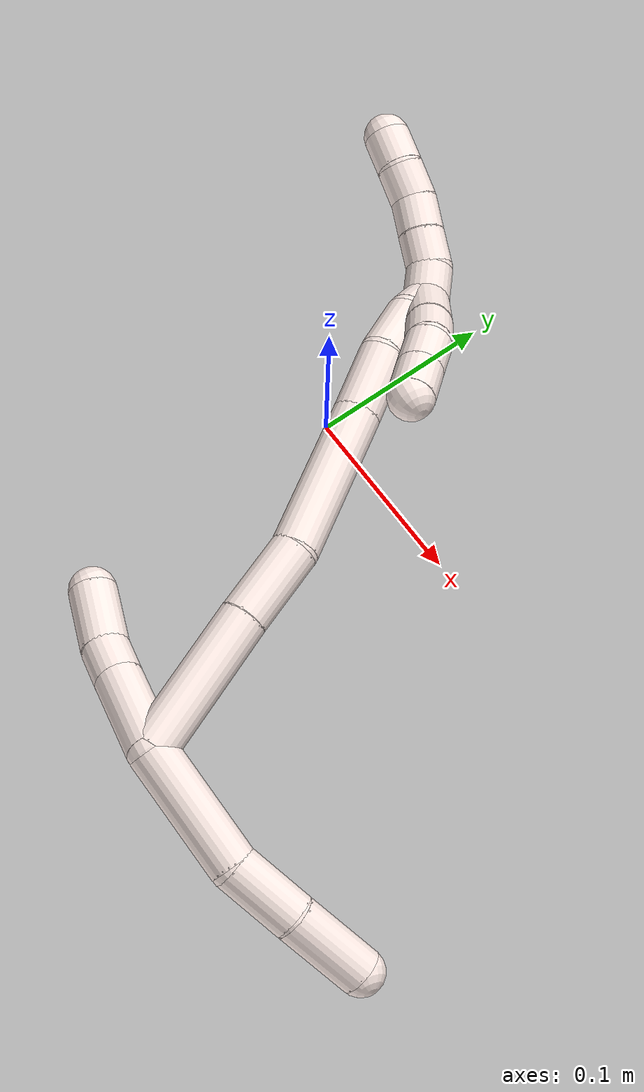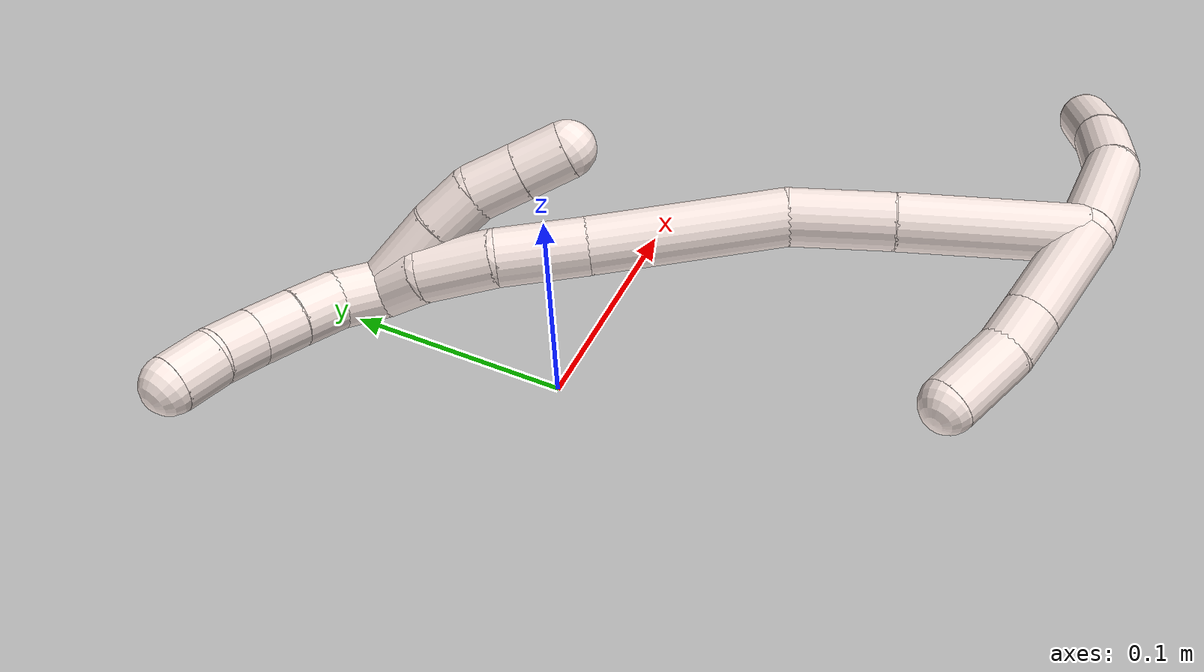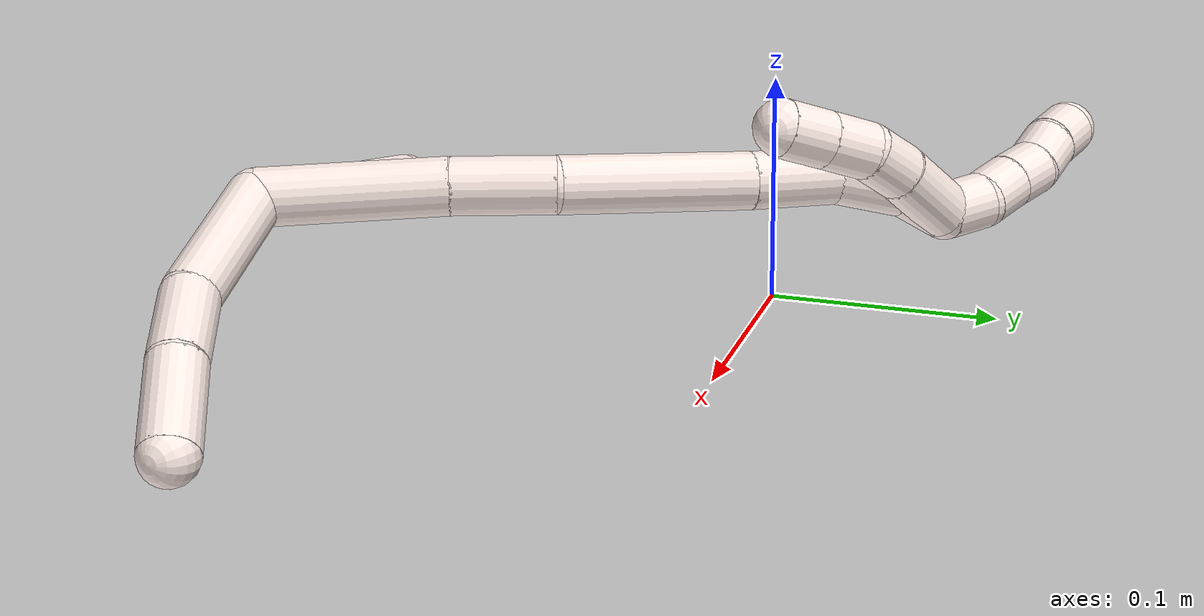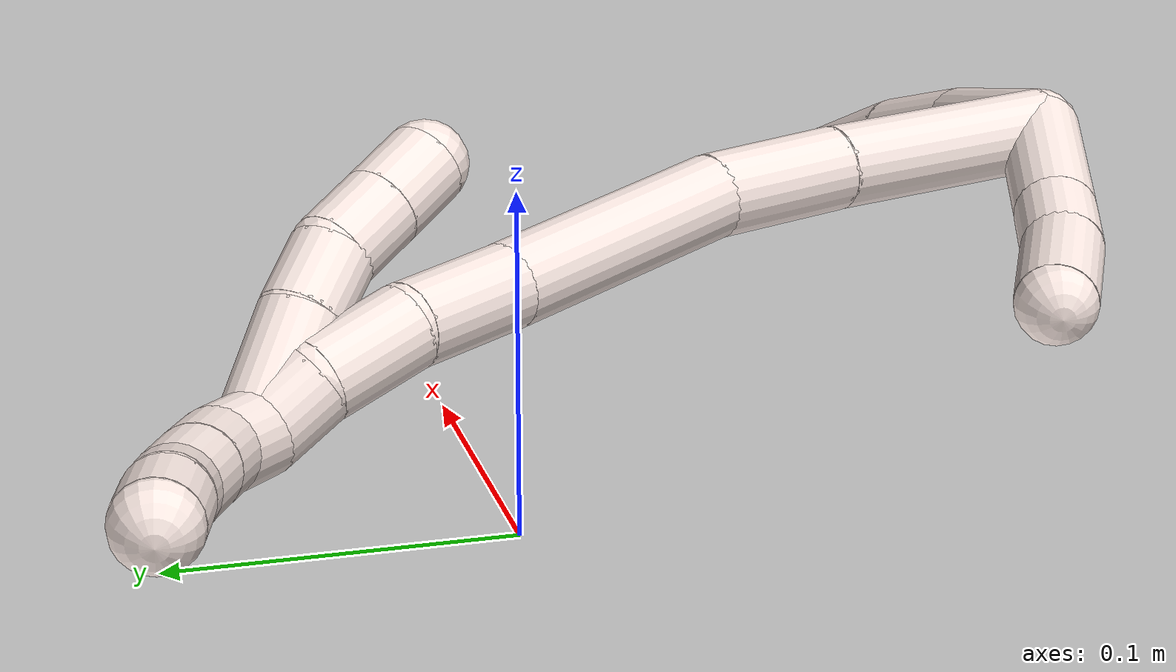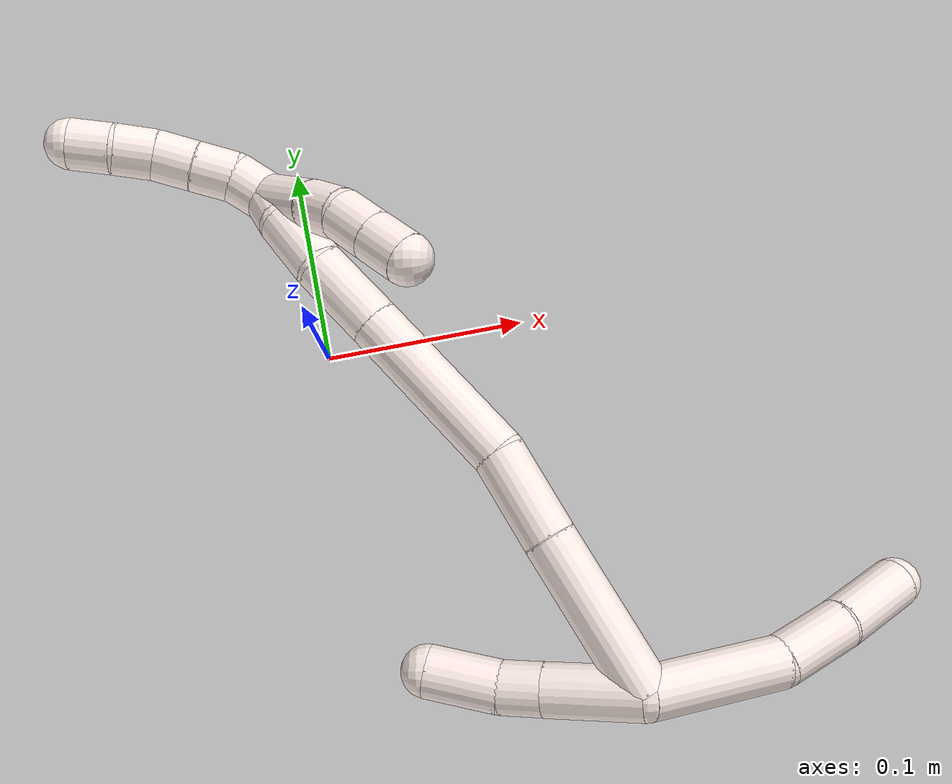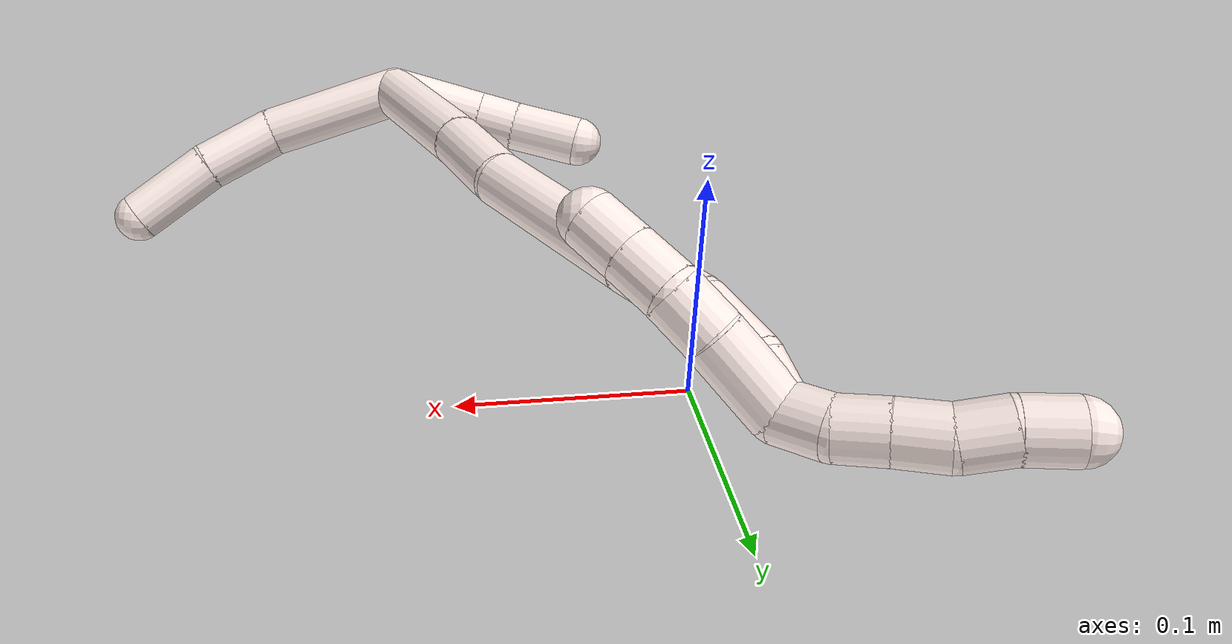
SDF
<sdf version="1.7">
 <world name="default">
  <model name="photoneo_s_sensor">
   <static>1</static>
   <pose>0 0 2 1.57079 1.57079 3.14159</pose>
   <link name="link">
    <inertial><mass>0.1</mass></inertial>
    <sensor name="sensor" type="depth">
     <update_rate>30</update_rate>
     <camera>
      <horizontal_fov>1.22</horizontal_fov>
      <image><width>1920</width><height>1200</height><format>B8G8R8</format></image>
      <clip><near>0.1</near><far>4</far></clip>
      <depth_camera><output>points</output></depth_camera>
     </camera>
     <plugin name="camera_plugin" filename="libgazebo_ros_depth_camera.so">
      <baseline>0.2</baseline>
      <alwaysOn>1</alwaysOn>
      <updateRate>0.0</updateRate>
      <cameraName>camera_ir</cameraName>
      <imageTopicName>/camera/color/image_raw</imageTopicName>
      <cameraInfoTopicName>/camera/color/camera_info</cameraInfoTopicName>
      <depthImageTopicName>/camera/depth/image_raw</depthImageTopicName>
      <depthImageCameraInfoTopicName>/camera/depth/camera_info</depthImageCameraInfoTopicName>
      <pointCloudTopicName>/camera/depth/points</pointCloudTopicName>
      <frameName>fr_optical</frameName>
      <pointCloudCutoff>0.1</pointCloudCutoff>
      <pointCloudCutoffMax>2.0</pointCloudCutoffMax>
      <distortionK1>0</distortionK1>
      <distortionK2>0</distortionK2>
      <distortionK3>0</distortionK3>
      <distortionT1>0</distortionT1>
      <distortionT2>0</distortionT2>
      <CxPrime>0</CxPrime>
      <Cx>0</Cx>
      <Cy>0</Cy>
      <focalLength>0</focalLength>
      <hackBaseline>0</hackBaseline>
     </plugin>
    </sensor>
   </link>
  </model>
  <model name="bin">
   <static>1</static>
   <link name="bottom">
    <collision name="collision-bottom">
     <pose>0 0 -0.01 0 -0 0</pose>
     <geometry><box><size>0.8 0.6 0.02</size></box></geometry>
     <surface>
      <friction><ode><mu>100</mu><mu2>100</mu2></ode></friction>
      <contact><collide_bitmask>65535</collide_bitmask></contact>
     </surface>
    </collision>
   </link>
   <link name="west_wall">
    <collision name="collision-west_wall">
     <pose>-0.41 0 0.1 0 -0 0</pose>
     <geometry><box><size>0.02 0.6 0.2</size></box></geometry>
     <surface>
      <friction><ode><mu>100</mu><mu2>100</mu2></ode></friction>
      <contact><collide_bitmask>65535</collide_bitmask></contact>
     </surface>
    </collision>
   </link>
   <link name="east_wall">
    <collision name="collision-east_wall">
     <pose>0.41 0 0.1 0 -0 0</pose>
     <geometry><box><size>0.02 0.6 0.2</size></box></geometry>
     <surface>
      <friction><ode><mu>100</mu><mu2>100</mu2></ode></friction>
      <contact><collide_bitmask>65535</collide_bitmask></contact>
     </surface>
    </collision>
   </link>
   <link name="south_wall">
    <collision name="collision-south_wall">
     <pose>0 -0.31 0.1 0 -0 0</pose>
     <geometry><box><size>0.8 0.02 0.2</size></box></geometry>
     <surface>
      <friction><ode><mu>100</mu><mu2>100</mu2></ode></friction>
      <contact><collide_bitmask>65535</collide_bitmask></contact>
     </surface>
    </collision>
   </link>
   <link name="north_wall">
    <collision name="collision-north_wall">
     <pose>0 0.31 0.1 0 -0 0</pose>
     <geometry><box><size>0.8 0.02 0.2</size></box></geometry>
     <surface>
      <friction><ode><mu>100</mu><mu2>100</mu2></ode></friction>
      <contact><collide_bitmask>65535</collide_bitmask></contact>
     </surface>
    </collision>
   </link>
  </model>
  <model name="11">
   <static>0</static>
   <link name="11">
    <collision name="collision-cylinder-e_1_2_8">
     <pose>0.009358 0.010302 0.03099 -0.320929 0.279078 -0.045458</pose>
     <geometry><cylinder><radius>0.0125</radius><length>0.067943</length></cylinder></geometry>
     <surface>
      <friction><ode><mu>1.16</mu><mu2>1.16</mu2><slip1>0</slip1><slip2>0</slip2></ode></friction>
      <contact><ode><kp>1e+06</kp><kd>1</kd><max_vel>0</max_vel><min_depth>0.001</min_depth></ode></contact>
     </surface>
    </collision>
    <visual name="visual-cylinder-e_1_2_8">
     <pose>0.009358 0.010302 0.03099 -0.320929 0.279078 -0.045458</pose>
     <geometry><cylinder><radius>0.0125</radius><length>0.067943</length></cylinder></geometry>
     <material><ambient>1 0.933333 0.909804 1</ambient></material>
    </visual>
    <collision name="collision-cylinder-e_2_8_9">
     <pose>0.023545 0.031215 0.07718 -0.609472 0.254825 -0.080544</pose>
     <geometry><cylinder><radius>0.0125</radius><length>0.038315</length></cylinder></geometry>
     <surface>
      <friction><ode><mu>1.16</mu><mu2>1.16</mu2><slip1>0</slip1><slip2>0</slip2></ode></friction>
      <contact><ode><kp>1e+06</kp><kd>1</kd><max_vel>0</max_vel><min_depth>0.001</min_depth></ode></contact>
     </surface>
    </collision>
    <visual name="visual-cylinder-e_2_8_9">
     <pose>0.023545 0.031215 0.07718 -0.609472 0.254825 -0.080544</pose>
     <geometry><cylinder><radius>0.0125</radius><length>0.038315</length></cylinder></geometry>
     <material><ambient>1 0.933333 0.909804 1</ambient></material>
    </visual>
    <collision name="collision-cylinder-e_3_9_6">
     <pose>0.036248 0.054949 0.108008 -0.698471 0.368255 -0.135434</pose>
     <geometry><cylinder><radius>0.0125</radius><length>0.043742</length></cylinder></geometry>
     <surface>
      <friction><ode><mu>1.16</mu><mu2>1.16</mu2><slip1>0</slip1><slip2>0</slip2></ode></friction>
      <contact><ode><kp>1e+06</kp><kd>1</kd><max_vel>0</max_vel><min_depth>0.001</min_depth></ode></contact>
     </surface>
    </collision>
    <visual name="visual-cylinder-e_3_9_6">
     <pose>0.036248 0.054949 0.108008 -0.698471 0.368255 -0.135434</pose>
     <geometry><cylinder><radius>0.0125</radius><length>0.043742</length></cylinder></geometry>
     <material><ambient>1 0.933333 0.909804 1</ambient></material>
    </visual>
    <collision name="collision-cylinder-e_1_2_10">
     <pose>0.003507 0.001977 -0.022484 -3.05387 0.154158 -2.10808</pose>
     <geometry><cylinder><radius>0.0125</radius><length>0.045683</length></cylinder></geometry>
     <surface>
      <friction><ode><mu>1.16</mu><mu2>1.16</mu2><slip1>0</slip1><slip2>0</slip2></ode></friction>
      <contact><ode><kp>1e+06</kp><kd>1</kd><max_vel>0</max_vel><min_depth>0.001</min_depth></ode></contact>
     </surface>
    </collision>
    <visual name="visual-cylinder-e_1_2_10">
     <pose>0.003507 0.001977 -0.022484 -3.05387 0.154158 -2.10808</pose>
     <geometry><cylinder><radius>0.0125</radius><length>0.045683</length></cylinder></geometry>
     <material><ambient>1 0.933333 0.909804 1</ambient></material>
    </visual>
    <collision name="collision-cylinder-e_2_10_11">
     <pose>0.008429 0.004902 -0.054861 -3.04615 0.141396 -1.95489</pose>
     <geometry><cylinder><radius>0.0125</radius><length>0.020079</length></cylinder></geometry>
     <surface>
      <friction><ode><mu>1.16</mu><mu2>1.16</mu2><slip1>0</slip1><slip2>0</slip2></ode></friction>
      <contact><ode><kp>1e+06</kp><kd>1</kd><max_vel>0</max_vel><min_depth>0.001</min_depth></ode></contact>
     </surface>
    </collision>
    <visual name="visual-cylinder-e_2_10_11">
     <pose>0.008429 0.004902 -0.054861 -3.04615 0.141396 -1.95489</pose>
     <geometry><cylinder><radius>0.0125</radius><length>0.020079</length></cylinder></geometry>
     <material><ambient>1 0.933333 0.909804 1</ambient></material>
    </visual>
    <collision name="collision-cylinder-e_3_11_5">
     <pose>0.009688 0.009524 -0.081475 -2.92524 -0.009125 0.083975</pose>
     <geometry><cylinder><radius>0.0125</radius><length>0.034239</length></cylinder></geometry>
     <surface>
      <friction><ode><mu>1.16</mu><mu2>1.16</mu2><slip1>0</slip1><slip2>0</slip2></ode></friction>
      <contact><ode><kp>1e+06</kp><kd>1</kd><max_vel>0</max_vel><min_depth>0.001</min_depth></ode></contact>
     </surface>
    </collision>
    <visual name="visual-cylinder-e_3_11_5">
     <pose>0.009688 0.009524 -0.081475 -2.92524 -0.009125 0.083975</pose>
     <geometry><cylinder><radius>0.0125</radius><length>0.034239</length></cylinder></geometry>
     <material><ambient>1 0.933333 0.909804 1</ambient></material>
    </visual>
    <collision name="collision-cylinder-e_1_2_12">
     <pose>-0.013457 0.031336 -0.020783 -2.15641 -0.343679 0.625482</pose>
     <geometry><cylinder><radius>0.0125</radius><length>0.079874</length></cylinder></geometry>
     <surface>
      <friction><ode><mu>1.16</mu><mu2>1.16</mu2><slip1>0</slip1><slip2>0</slip2></ode></friction>
      <contact><ode><kp>1e+06</kp><kd>1</kd><max_vel>0</max_vel><min_depth>0.001</min_depth></ode></contact>
     </surface>
    </collision>
    <visual name="visual-cylinder-e_1_2_12">
     <pose>-0.013457 0.031336 -0.020783 -2.15641 -0.343679 0.625482</pose>
     <geometry><cylinder><radius>0.0125</radius><length>0.079874</length></cylinder></geometry>
     <material><ambient>1 0.933333 0.909804 1</ambient></material>
    </visual>
    <collision name="collision-cylinder-e_2_12_13">
     <pose>-0.03354 0.080705 -0.052854 -2.13011 -0.301918 0.536152</pose>
     <geometry><cylinder><radius>0.0125</radius><length>0.044565</length></cylinder></geometry>
     <surface>
      <friction><ode><mu>1.16</mu><mu2>1.16</mu2><slip1>0</slip1><slip2>0</slip2></ode></friction>
      <contact><ode><kp>1e+06</kp><kd>1</kd><max_vel>0</max_vel><min_depth>0.001</min_depth></ode></contact>
     </surface>
    </collision>
    <visual name="visual-cylinder-e_2_12_13">
     <pose>-0.03354 0.080705 -0.052854 -2.13011 -0.301918 0.536152</pose>
     <geometry><cylinder><radius>0.0125</radius><length>0.044565</length></cylinder></geometry>
     <material><ambient>1 0.933333 0.909804 1</ambient></material>
    </visual>
    <collision name="collision-cylinder-e_3_13_14">
     <pose>-0.049246 0.128358 -0.092889 -2.34124 -0.216541 0.503042</pose>
     <geometry><cylinder><radius>0.0125</radius><length>0.084526</length></cylinder></geometry>
     <surface>
      <friction><ode><mu>1.16</mu><mu2>1.16</mu2><slip1>0</slip1><slip2>0</slip2></ode></friction>
      <contact><ode><kp>1e+06</kp><kd>1</kd><max_vel>0</max_vel><min_depth>0.001</min_depth></ode></contact>
     </surface>
    </collision>
    <visual name="visual-cylinder-e_3_13_14">
     <pose>-0.049246 0.128358 -0.092889 -2.34124 -0.216541 0.503042</pose>
     <geometry><cylinder><radius>0.0125</radius><length>0.084526</length></cylinder></geometry>
     <material><ambient>1 0.933333 0.909804 1</ambient></material>
    </visual>
    <collision name="collision-cylinder-e_4_14_15">
     <pose>-0.063086 0.171119 -0.134878 -2.35999 -0.249843 0.591714</pose>
     <geometry><cylinder><radius>0.0125</radius><length>0.038506</length></cylinder></geometry>
     <surface>
      <friction><ode><mu>1.16</mu><mu2>1.16</mu2><slip1>0</slip1><slip2>0</slip2></ode></friction>
      <contact><ode><kp>1e+06</kp><kd>1</kd><max_vel>0</max_vel><min_depth>0.001</min_depth></ode></contact>
     </surface>
    </collision>
    <visual name="visual-cylinder-e_4_14_15">
     <pose>-0.063086 0.171119 -0.134878 -2.35999 -0.249843 0.591714</pose>
     <geometry><cylinder><radius>0.0125</radius><length>0.038506</length></cylinder></geometry>
     <material><ambient>1 0.933333 0.909804 1</ambient></material>
    </visual>
    <collision name="collision-cylinder-e_5_15_16">
     <pose>-0.068581 0.196925 -0.157778 -2.22236 -0.046091 0.093067</pose>
     <geometry><cylinder><radius>0.0125</radius><length>0.031891</length></cylinder></geometry>
     <surface>
      <friction><ode><mu>1.16</mu><mu2>1.16</mu2><slip1>0</slip1><slip2>0</slip2></ode></friction>
      <contact><ode><kp>1e+06</kp><kd>1</kd><max_vel>0</max_vel><min_depth>0.001</min_depth></ode></contact>
     </surface>
    </collision>
    <visual name="visual-cylinder-e_5_15_16">
     <pose>-0.068581 0.196925 -0.157778 -2.22236 -0.046091 0.093067</pose>
     <geometry><cylinder><radius>0.0125</radius><length>0.031891</length></cylinder></geometry>
     <material><ambient>1 0.933333 0.909804 1</ambient></material>
    </visual>
    <collision name="collision-cylinder-e_6_16_1">
     <pose>-0.067019 0.218391 -0.172311 -2.07653 0.224549 -0.378068</pose>
     <geometry><cylinder><radius>0.0125</radius><length>0.020637</length></cylinder></geometry>
     <surface>
      <friction><ode><mu>1.16</mu><mu2>1.16</mu2><slip1>0</slip1><slip2>0</slip2></ode></friction>
      <contact><ode><kp>1e+06</kp><kd>1</kd><max_vel>0</max_vel><min_depth>0.001</min_depth></ode></contact>
     </surface>
    </collision>
    <visual name="visual-cylinder-e_6_16_1">
     <pose>-0.067019 0.218391 -0.172311 -2.07653 0.224549 -0.378068</pose>
     <geometry><cylinder><radius>0.0125</radius><length>0.020637</length></cylinder></geometry>
     <material><ambient>1 0.933333 0.909804 1</ambient></material>
    </visual>
    <collision name="collision-cylinder-e_1_1_17">
     <pose>-0.072956 0.218415 -0.16415 0.592616 -0.482715 -0.150019</pose>
     <geometry><cylinder><radius>0.0125</radius><length>0.035481</length></cylinder></geometry>
     <surface>
      <friction><ode><mu>1.16</mu><mu2>1.16</mu2><slip1>0</slip1><slip2>0</slip2></ode></friction>
      <contact><ode><kp>1e+06</kp><kd>1</kd><max_vel>0</max_vel><min_depth>0.001</min_depth></ode></contact>
     </surface>
    </collision>
    <visual name="visual-cylinder-e_1_1_17">
     <pose>-0.072956 0.218415 -0.16415 0.592616 -0.482715 -0.150019</pose>
     <geometry><cylinder><radius>0.0125</radius><length>0.035481</length></cylinder></geometry>
     <material><ambient>1 0.933333 0.909804 1</ambient></material>
    </visual>
    <collision name="collision-cylinder-e_2_17_18">
     <pose>-0.085189 0.203742 -0.142925 0.623914 -0.377179 -0.122943</pose>
     <geometry><cylinder><radius>0.0125</radius><length>0.021713</length></cylinder></geometry>
     <surface>
      <friction><ode><mu>1.16</mu><mu2>1.16</mu2><slip1>0</slip1><slip2>0</slip2></ode></friction>
      <contact><ode><kp>1e+06</kp><kd>1</kd><max_vel>0</max_vel><min_depth>0.001</min_depth></ode></contact>
     </surface>
    </collision>
    <visual name="visual-cylinder-e_2_17_18">
     <pose>-0.085189 0.203742 -0.142925 0.623914 -0.377179 -0.122943</pose>
     <geometry><cylinder><radius>0.0125</radius><length>0.021713</length></cylinder></geometry>
     <material><ambient>1 0.933333 0.909804 1</ambient></material>
    </visual>
    <collision name="collision-cylinder-e_3_18_19">
     <pose>-0.09017 0.190632 -0.126753 0.734966 -0.091051 -0.035073</pose>
     <geometry><cylinder><radius>0.0125</radius><length>0.021601</length></cylinder></geometry>
     <surface>
      <friction><ode><mu>1.16</mu><mu2>1.16</mu2><slip1>0</slip1><slip2>0</slip2></ode></friction>
      <contact><ode><kp>1e+06</kp><kd>1</kd><max_vel>0</max_vel><min_depth>0.001</min_depth></ode></contact>
     </surface>
    </collision>
    <visual name="visual-cylinder-e_3_18_19">
     <pose>-0.09017 0.190632 -0.126753 0.734966 -0.091051 -0.035073</pose>
     <geometry><cylinder><radius>0.0125</radius><length>0.021601</length></cylinder></geometry>
     <material><ambient>1 0.933333 0.909804 1</ambient></material>
    </visual>
    <collision name="collision-cylinder-e_4_19_4">
     <pose>-0.092106 0.176426 -0.110863 0.723892 -0.090111 -0.034138</pose>
     <geometry><cylinder><radius>0.0125</radius><length>0.021204</length></cylinder></geometry>
     <surface>
      <friction><ode><mu>1.16</mu><mu2>1.16</mu2><slip1>0</slip1><slip2>0</slip2></ode></friction>
      <contact><ode><kp>1e+06</kp><kd>1</kd><max_vel>0</max_vel><min_depth>0.001</min_depth></ode></contact>
     </surface>
    </collision>
    <visual name="visual-cylinder-e_4_19_4">
     <pose>-0.092106 0.176426 -0.110863 0.723892 -0.090111 -0.034138</pose>
     <geometry><cylinder><radius>0.0125</radius><length>0.021204</length></cylinder></geometry>
     <material><ambient>1 0.933333 0.909804 1</ambient></material>
    </visual>
    <collision name="collision-cylinder-e_1_1_20">
     <pose>-0.067714 0.231777 -0.185552 -2.64028 -0.303935 1.0781</pose>
     <geometry><cylinder><radius>0.0125</radius><length>0.02</length></cylinder></geometry>
     <surface>
      <friction><ode><mu>1.16</mu><mu2>1.16</mu2><slip1>0</slip1><slip2>0</slip2></ode></friction>
      <contact><ode><kp>1e+06</kp><kd>1</kd><max_vel>0</max_vel><min_depth>0.001</min_depth></ode></contact>
     </surface>
    </collision>
    <visual name="visual-cylinder-e_1_1_20">
     <pose>-0.067714 0.231777 -0.185552 -2.64028 -0.303935 1.0781</pose>
     <geometry><cylinder><radius>0.0125</radius><length>0.02</length></cylinder></geometry>
     <material><ambient>1 0.933333 0.909804 1</ambient></material>
    </visual>
    <collision name="collision-cylinder-e_2_20_21">
     <pose>-0.073586 0.237831 -0.203383 -2.9876 -0.292054 2.17541</pose>
     <geometry><cylinder><radius>0.0125</radius><length>0.02</length></cylinder></geometry>
     <surface>
      <friction><ode><mu>1.16</mu><mu2>1.16</mu2><slip1>0</slip1><slip2>0</slip2></ode></friction>
      <contact><ode><kp>1e+06</kp><kd>1</kd><max_vel>0</max_vel><min_depth>0.001</min_depth></ode></contact>
     </surface>
    </collision>
    <visual name="visual-cylinder-e_2_20_21">
     <pose>-0.073586 0.237831 -0.203383 -2.9876 -0.292054 2.17541</pose>
     <geometry><cylinder><radius>0.0125</radius><length>0.02</length></cylinder></geometry>
     <material><ambient>1 0.933333 0.909804 1</ambient></material>
    </visual>
    <collision name="collision-cylinder-e_3_21_22">
     <pose>-0.079021 0.241089 -0.222347 -2.95548 -0.25845 1.89594</pose>
     <geometry><cylinder><radius>0.0125</radius><length>0.02</length></cylinder></geometry>
     <surface>
      <friction><ode><mu>1.16</mu><mu2>1.16</mu2><slip1>0</slip1><slip2>0</slip2></ode></friction>
      <contact><ode><kp>1e+06</kp><kd>1</kd><max_vel>0</max_vel><min_depth>0.001</min_depth></ode></contact>
     </surface>
    </collision>
    <visual name="visual-cylinder-e_3_21_22">
     <pose>-0.079021 0.241089 -0.222347 -2.95548 -0.25845 1.89594</pose>
     <geometry><cylinder><radius>0.0125</radius><length>0.02</length></cylinder></geometry>
     <material><ambient>1 0.933333 0.909804 1</ambient></material>
    </visual>
    <collision name="collision-cylinder-e_4_22_23">
     <pose>-0.085094 0.24217 -0.241182 3.06583 -0.3594 -2.73026</pose>
     <geometry><cylinder><radius>0.0125</radius><length>0.02</length></cylinder></geometry>
     <surface>
      <friction><ode><mu>1.16</mu><mu2>1.16</mu2><slip1>0</slip1><slip2>0</slip2></ode></friction>
      <contact><ode><kp>1e+06</kp><kd>1</kd><max_vel>0</max_vel><min_depth>0.001</min_depth></ode></contact>
     </surface>
    </collision>
    <visual name="visual-cylinder-e_4_22_23">
     <pose>-0.085094 0.24217 -0.241182 3.06583 -0.3594 -2.73026</pose>
     <geometry><cylinder><radius>0.0125</radius><length>0.02</length></cylinder></geometry>
     <material><ambient>1 0.933333 0.909804 1</ambient></material>
    </visual>
    <collision name="collision-cylinder-e_5_23_3">
     <pose>-0.090493 0.241745 -0.260334 -3.11268 -0.18939 2.83952</pose>
     <geometry><cylinder><radius>0.0125</radius><length>0.02</length></cylinder></geometry>
     <surface>
      <friction><ode><mu>1.16</mu><mu2>1.16</mu2><slip1>0</slip1><slip2>0</slip2></ode></friction>
      <contact><ode><kp>1e+06</kp><kd>1</kd><max_vel>0</max_vel><min_depth>0.001</min_depth></ode></contact>
     </surface>
    </collision>
    <visual name="visual-cylinder-e_5_23_3">
     <pose>-0.090493 0.241745 -0.260334 -3.11268 -0.18939 2.83952</pose>
     <geometry><cylinder><radius>0.0125</radius><length>0.02</length></cylinder></geometry>
     <material><ambient>1 0.933333 0.909804 1</ambient></material>
    </visual>
    <collision name="collision-sphere-3">
     <pose>-0.092376 0.242029 -0.270151 0 -0 0</pose>
     <geometry><sphere><radius>0.0125</radius></sphere></geometry>
     <surface>
      <friction><ode><mu>1.16</mu><mu2>1.16</mu2><slip1>0</slip1><slip2>0</slip2></ode></friction>
      <contact><ode><kp>1e+06</kp><kd>1</kd><max_vel>0</max_vel><min_depth>0.001</min_depth></ode></contact>
     </surface>
    </collision>
    <visual name="visual-sphere-3">
     <pose>-0.092376 0.242029 -0.270151 0 -0 0</pose>
     <geometry><sphere><radius>0.0125</radius></sphere></geometry>
     <material><ambient>1 0.933333 0.909804 1</ambient></material>
    </visual>
    <collision name="collision-sphere-23">
     <pose>-0.088611 0.241461 -0.250517 0 -0 0</pose>
     <geometry><sphere><radius>0.0125</radius></sphere></geometry>
     <surface>
      <friction><ode><mu>1.16</mu><mu2>1.16</mu2><slip1>0</slip1><slip2>0</slip2></ode></friction>
      <contact><ode><kp>1e+06</kp><kd>1</kd><max_vel>0</max_vel><min_depth>0.001</min_depth></ode></contact>
     </surface>
    </collision>
    <visual name="visual-sphere-23">
     <pose>-0.088611 0.241461 -0.250517 0 -0 0</pose>
     <geometry><sphere><radius>0.0125</radius></sphere></geometry>
     <material><ambient>1 0.933333 0.909804 1</ambient></material>
    </visual>
    <collision name="collision-sphere-22">
     <pose>-0.081577 0.242878 -0.231848 0 -0 0</pose>
     <geometry><sphere><radius>0.0125</radius></sphere></geometry>
     <surface>
      <friction><ode><mu>1.16</mu><mu2>1.16</mu2><slip1>0</slip1><slip2>0</slip2></ode></friction>
      <contact><ode><kp>1e+06</kp><kd>1</kd><max_vel>0</max_vel><min_depth>0.001</min_depth></ode></contact>
     </surface>
    </collision>
    <visual name="visual-sphere-22">
     <pose>-0.081577 0.242878 -0.231848 0 -0 0</pose>
     <geometry><sphere><radius>0.0125</radius></sphere></geometry>
     <material><ambient>1 0.933333 0.909804 1</ambient></material>
    </visual>
    <collision name="collision-sphere-21">
     <pose>-0.076465 0.2393 -0.212846 0 -0 0</pose>
     <geometry><sphere><radius>0.0125</radius></sphere></geometry>
     <surface>
      <friction><ode><mu>1.16</mu><mu2>1.16</mu2><slip1>0</slip1><slip2>0</slip2></ode></friction>
      <contact><ode><kp>1e+06</kp><kd>1</kd><max_vel>0</max_vel><min_depth>0.001</min_depth></ode></contact>
     </surface>
    </collision>
    <visual name="visual-sphere-21">
     <pose>-0.076465 0.2393 -0.212846 0 -0 0</pose>
     <geometry><sphere><radius>0.0125</radius></sphere></geometry>
     <material><ambient>1 0.933333 0.909804 1</ambient></material>
    </visual>
    <collision name="collision-sphere-20">
     <pose>-0.070706 0.236362 -0.19392 0 -0 0</pose>
     <geometry><sphere><radius>0.0125</radius></sphere></geometry>
     <surface>
      <friction><ode><mu>1.16</mu><mu2>1.16</mu2><slip1>0</slip1><slip2>0</slip2></ode></friction>
      <contact><ode><kp>1e+06</kp><kd>1</kd><max_vel>0</max_vel><min_depth>0.001</min_depth></ode></contact>
     </surface>
    </collision>
    <visual name="visual-sphere-20">
     <pose>-0.070706 0.236362 -0.19392 0 -0 0</pose>
     <geometry><sphere><radius>0.0125</radius></sphere></geometry>
     <material><ambient>1 0.933333 0.909804 1</ambient></material>
    </visual>
    <collision name="collision-sphere-4">
     <pose>-0.09306 0.169433 -0.102952 0 -0 0</pose>
     <geometry><sphere><radius>0.0125</radius></sphere></geometry>
     <surface>
      <friction><ode><mu>1.16</mu><mu2>1.16</mu2><slip1>0</slip1><slip2>0</slip2></ode></friction>
      <contact><ode><kp>1e+06</kp><kd>1</kd><max_vel>0</max_vel><min_depth>0.001</min_depth></ode></contact>
     </surface>
    </collision>
    <visual name="visual-sphere-4">
     <pose>-0.09306 0.169433 -0.102952 0 -0 0</pose>
     <geometry><sphere><radius>0.0125</radius></sphere></geometry>
     <material><ambient>1 0.933333 0.909804 1</ambient></material>
    </visual>
    <collision name="collision-sphere-11">
     <pose>0.009844 0.005849 -0.064755 0 -0 0</pose>
     <geometry><sphere><radius>0.0125</radius></sphere></geometry>
     <surface>
      <friction><ode><mu>1.16</mu><mu2>1.16</mu2><slip1>0</slip1><slip2>0</slip2></ode></friction>
      <contact><ode><kp>1e+06</kp><kd>1</kd><max_vel>0</max_vel><min_depth>0.001</min_depth></ode></contact>
     </surface>
    </collision>
    <visual name="visual-sphere-11">
     <pose>0.009844 0.005849 -0.064755 0 -0 0</pose>
     <geometry><sphere><radius>0.0125</radius></sphere></geometry>
     <material><ambient>1 0.933333 0.909804 1</ambient></material>
    </visual>
    <collision name="collision-sphere-10">
     <pose>0.007014 0.003955 -0.044967 0 -0 0</pose>
     <geometry><sphere><radius>0.0125</radius></sphere></geometry>
     <surface>
      <friction><ode><mu>1.16</mu><mu2>1.16</mu2><slip1>0</slip1><slip2>0</slip2></ode></friction>
      <contact><ode><kp>1e+06</kp><kd>1</kd><max_vel>0</max_vel><min_depth>0.001</min_depth></ode></contact>
     </surface>
    </collision>
    <visual name="visual-sphere-10">
     <pose>0.007014 0.003955 -0.044967 0 -0 0</pose>
     <geometry><sphere><radius>0.0125</radius></sphere></geometry>
     <material><ambient>1 0.933333 0.909804 1</ambient></material>
    </visual>
    <collision name="collision-sphere-6">
     <pose>0.044121 0.06807 0.123634 0 -0 0</pose>
     <geometry><sphere><radius>0.0125</radius></sphere></geometry>
     <surface>
      <friction><ode><mu>1.16</mu><mu2>1.16</mu2><slip1>0</slip1><slip2>0</slip2></ode></friction>
      <contact><ode><kp>1e+06</kp><kd>1</kd><max_vel>0</max_vel><min_depth>0.001</min_depth></ode></contact>
     </surface>
    </collision>
    <visual name="visual-sphere-6">
     <pose>0.044121 0.06807 0.123634 0 -0 0</pose>
     <geometry><sphere><radius>0.0125</radius></sphere></geometry>
     <material><ambient>1 0.933333 0.909804 1</ambient></material>
    </visual>
    <collision name="collision-sphere-9">
     <pose>0.028374 0.041828 0.092381 0 -0 0</pose>
     <geometry><sphere><radius>0.0125</radius></sphere></geometry>
     <surface>
      <friction><ode><mu>1.16</mu><mu2>1.16</mu2><slip1>0</slip1><slip2>0</slip2></ode></friction>
      <contact><ode><kp>1e+06</kp><kd>1</kd><max_vel>0</max_vel><min_depth>0.001</min_depth></ode></contact>
     </surface>
    </collision>
    <visual name="visual-sphere-9">
     <pose>0.028374 0.041828 0.092381 0 -0 0</pose>
     <geometry><sphere><radius>0.0125</radius></sphere></geometry>
     <material><ambient>1 0.933333 0.909804 1</ambient></material>
    </visual>
    <collision name="collision-sphere-2">
     <geometry><sphere><radius>0.0125</radius></sphere></geometry>
     <surface>
      <friction><ode><mu>1.16</mu><mu2>1.16</mu2><slip1>0</slip1><slip2>0</slip2></ode></friction>
      <contact><ode><kp>1e+06</kp><kd>1</kd><max_vel>0</max_vel><min_depth>0.001</min_depth></ode></contact>
     </surface>
    </collision>
    <visual name="visual-sphere-2">
     <geometry><sphere><radius>0.0125</radius></sphere></geometry>
     <material><ambient>1 0.933333 0.909804 1</ambient></material>
    </visual>
    <collision name="collision-sphere-19">
     <pose>-0.091152 0.18342 -0.118774 0 -0 0</pose>
     <geometry><sphere><radius>0.0125</radius></sphere></geometry>
     <surface>
      <friction><ode><mu>1.16</mu><mu2>1.16</mu2><slip1>0</slip1><slip2>0</slip2></ode></friction>
      <contact><ode><kp>1e+06</kp><kd>1</kd><max_vel>0</max_vel><min_depth>0.001</min_depth></ode></contact>
     </surface>
    </collision>
    <visual name="visual-sphere-19">
     <pose>-0.091152 0.18342 -0.118774 0 -0 0</pose>
     <geometry><sphere><radius>0.0125</radius></sphere></geometry>
     <material><ambient>1 0.933333 0.909804 1</ambient></material>
    </visual>
    <collision name="collision-sphere-8">
     <pose>0.018716 0.020603 0.061979 0 -0 0</pose>
     <geometry><sphere><radius>0.0125</radius></sphere></geometry>
     <surface>
      <friction><ode><mu>1.16</mu><mu2>1.16</mu2><slip1>0</slip1><slip2>0</slip2></ode></friction>
      <contact><ode><kp>1e+06</kp><kd>1</kd><max_vel>0</max_vel><min_depth>0.001</min_depth></ode></contact>
     </surface>
    </collision>
    <visual name="visual-sphere-8">
     <pose>0.018716 0.020603 0.061979 0 -0 0</pose>
     <geometry><sphere><radius>0.0125</radius></sphere></geometry>
     <material><ambient>1 0.933333 0.909804 1</ambient></material>
    </visual>
    <collision name="collision-sphere-5">
     <pose>0.009532 0.013199 -0.098194 0 -0 0</pose>
     <geometry><sphere><radius>0.0125</radius></sphere></geometry>
     <surface>
      <friction><ode><mu>1.16</mu><mu2>1.16</mu2><slip1>0</slip1><slip2>0</slip2></ode></friction>
      <contact><ode><kp>1e+06</kp><kd>1</kd><max_vel>0</max_vel><min_depth>0.001</min_depth></ode></contact>
     </surface>
    </collision>
    <visual name="visual-sphere-5">
     <pose>0.009532 0.013199 -0.098194 0 -0 0</pose>
     <geometry><sphere><radius>0.0125</radius></sphere></geometry>
     <material><ambient>1 0.933333 0.909804 1</ambient></material>
    </visual>
    <collision name="collision-sphere-12">
     <pose>-0.026914 0.062673 -0.041565 0 -0 0</pose>
     <geometry><sphere><radius>0.0125</radius></sphere></geometry>
     <surface>
      <friction><ode><mu>1.16</mu><mu2>1.16</mu2><slip1>0</slip1><slip2>0</slip2></ode></friction>
      <contact><ode><kp>1e+06</kp><kd>1</kd><max_vel>0</max_vel><min_depth>0.001</min_depth></ode></contact>
     </surface>
    </collision>
    <visual name="visual-sphere-12">
     <pose>-0.026914 0.062673 -0.041565 0 -0 0</pose>
     <geometry><sphere><radius>0.0125</radius></sphere></geometry>
     <material><ambient>1 0.933333 0.909804 1</ambient></material>
    </visual>
    <collision name="collision-sphere-13">
     <pose>-0.040165 0.098738 -0.064142 0 -0 0</pose>
     <geometry><sphere><radius>0.0125</radius></sphere></geometry>
     <surface>
      <friction><ode><mu>1.16</mu><mu2>1.16</mu2><slip1>0</slip1><slip2>0</slip2></ode></friction>
      <contact><ode><kp>1e+06</kp><kd>1</kd><max_vel>0</max_vel><min_depth>0.001</min_depth></ode></contact>
     </surface>
    </collision>
    <visual name="visual-sphere-13">
     <pose>-0.040165 0.098738 -0.064142 0 -0 0</pose>
     <geometry><sphere><radius>0.0125</radius></sphere></geometry>
     <material><ambient>1 0.933333 0.909804 1</ambient></material>
    </visual>
    <collision name="collision-sphere-14">
     <pose>-0.058326 0.157978 -0.121636 0 -0 0</pose>
     <geometry><sphere><radius>0.0125</radius></sphere></geometry>
     <surface>
      <friction><ode><mu>1.16</mu><mu2>1.16</mu2><slip1>0</slip1><slip2>0</slip2></ode></friction>
      <contact><ode><kp>1e+06</kp><kd>1</kd><max_vel>0</max_vel><min_depth>0.001</min_depth></ode></contact>
     </surface>
    </collision>
    <visual name="visual-sphere-14">
     <pose>-0.058326 0.157978 -0.121636 0 -0 0</pose>
     <geometry><sphere><radius>0.0125</radius></sphere></geometry>
     <material><ambient>1 0.933333 0.909804 1</ambient></material>
    </visual>
    <collision name="collision-sphere-15">
     <pose>-0.067847 0.18426 -0.148119 0 -0 0</pose>
     <geometry><sphere><radius>0.0125</radius></sphere></geometry>
     <surface>
      <friction><ode><mu>1.16</mu><mu2>1.16</mu2><slip1>0</slip1><slip2>0</slip2></ode></friction>
      <contact><ode><kp>1e+06</kp><kd>1</kd><max_vel>0</max_vel><min_depth>0.001</min_depth></ode></contact>
     </surface>
    </collision>
    <visual name="visual-sphere-15">
     <pose>-0.067847 0.18426 -0.148119 0 -0 0</pose>
     <geometry><sphere><radius>0.0125</radius></sphere></geometry>
     <material><ambient>1 0.933333 0.909804 1</ambient></material>
    </visual>
    <collision name="collision-sphere-16">
     <pose>-0.069316 0.209591 -0.167438 0 -0 0</pose>
     <geometry><sphere><radius>0.0125</radius></sphere></geometry>
     <surface>
      <friction><ode><mu>1.16</mu><mu2>1.16</mu2><slip1>0</slip1><slip2>0</slip2></ode></friction>
      <contact><ode><kp>1e+06</kp><kd>1</kd><max_vel>0</max_vel><min_depth>0.001</min_depth></ode></contact>
     </surface>
    </collision>
    <visual name="visual-sphere-16">
     <pose>-0.069316 0.209591 -0.167438 0 -0 0</pose>
     <geometry><sphere><radius>0.0125</radius></sphere></geometry>
     <material><ambient>1 0.933333 0.909804 1</ambient></material>
    </visual>
    <collision name="collision-sphere-1">
     <pose>-0.064721 0.227191 -0.177185 0 -0 0</pose>
     <geometry><sphere><radius>0.0125</radius></sphere></geometry>
     <surface>
      <friction><ode><mu>1.16</mu><mu2>1.16</mu2><slip1>0</slip1><slip2>0</slip2></ode></friction>
      <contact><ode><kp>1e+06</kp><kd>1</kd><max_vel>0</max_vel><min_depth>0.001</min_depth></ode></contact>
     </surface>
    </collision>
    <visual name="visual-sphere-1">
     <pose>-0.064721 0.227191 -0.177185 0 -0 0</pose>
     <geometry><sphere><radius>0.0125</radius></sphere></geometry>
     <material><ambient>1 0.933333 0.909804 1</ambient></material>
    </visual>
    <collision name="collision-sphere-18">
     <pose>-0.089188 0.197845 -0.134733 0 -0 0</pose>
     <geometry><sphere><radius>0.0125</radius></sphere></geometry>
     <surface>
      <friction><ode><mu>1.16</mu><mu2>1.16</mu2><slip1>0</slip1><slip2>0</slip2></ode></friction>
      <contact><ode><kp>1e+06</kp><kd>1</kd><max_vel>0</max_vel><min_depth>0.001</min_depth></ode></contact>
     </surface>
    </collision>
    <visual name="visual-sphere-18">
     <pose>-0.089188 0.197845 -0.134733 0 -0 0</pose>
     <geometry><sphere><radius>0.0125</radius></sphere></geometry>
     <material><ambient>1 0.933333 0.909804 1</ambient></material>
    </visual>
    <collision name="collision-sphere-17">
     <pose>-0.081191 0.209638 -0.151116 0 -0 0</pose>
     <geometry><sphere><radius>0.0125</radius></sphere></geometry>
     <surface>
      <friction><ode><mu>1.16</mu><mu2>1.16</mu2><slip1>0</slip1><slip2>0</slip2></ode></friction>
      <contact><ode><kp>1e+06</kp><kd>1</kd><max_vel>0</max_vel><min_depth>0.001</min_depth></ode></contact>
     </surface>
    </collision>
    <visual name="visual-sphere-17">
     <pose>-0.081191 0.209638 -0.151116 0 -0 0</pose>
     <geometry><sphere><radius>0.0125</radius></sphere></geometry>
     <material><ambient>1 0.933333 0.909804 1</ambient></material>
    </visual>
    <inertial>
     <pose>-0.033605 0.110753 -0.076069 0 -0 0</pose>
     <mass>0.75</mass>
     <inertia>
      <ixx>0.000189</ixx>
      <ixy>0</ixy>
      <ixz>0</ixz>
      <iyy>7.1e-05</iyy>
      <iyz>0</iyz>
      <izz>-9.6e-05</izz>
     </inertia>
    </inertial>
   </link>
   <pose>0.116396 -0.191521 0.06552 -1.32121 1.24806 -1.52365</pose>
  </model>
 </world>
</sdf>
